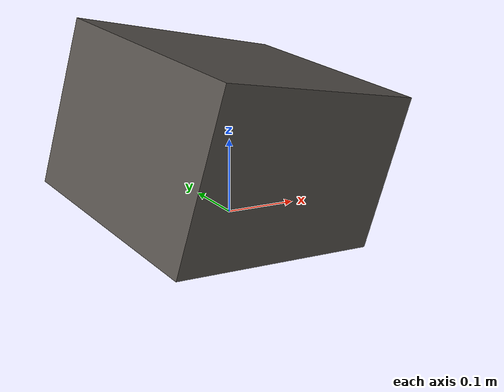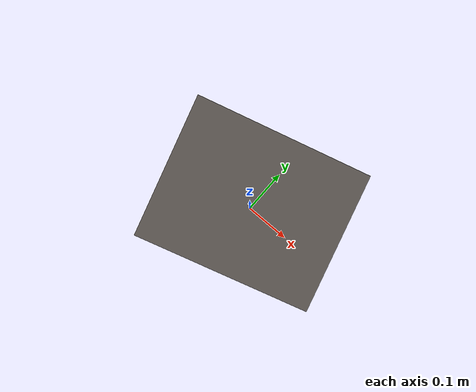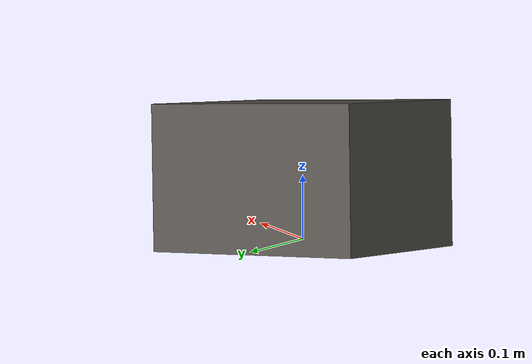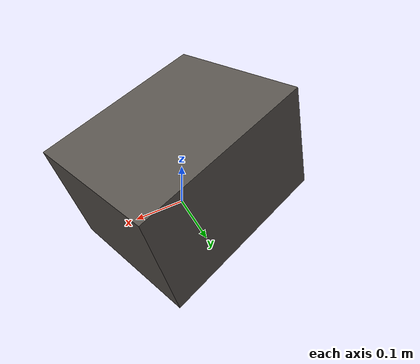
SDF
<?xml version="1.0"?>
<sdf version="1.9">
  <model name="lunar_rock_a">
    <static>true</static>
    <link name="body">
      <visual name="visual">
        <pose>0 0 0.1 0.2 0.15 0.3</pose>
        <geometry>
          <box><size>0.35 0.28 0.22</size></box>
        </geometry>
        <material>
          <ambient>0.30 0.28 0.26 1</ambient>
          <diffuse>0.35 0.33 0.31 1</diffuse>
          <specular>0.05 0.05 0.05 1</specular>
        </material>
      </visual>
      <collision name="collision">
        <pose>0 0 0.1 0 0 0</pose>
        <geometry>
          <box><size>0.35 0.28 0.22</size></box>
        </geometry>
      </collision>
    </link>
  </model>
</sdf>
